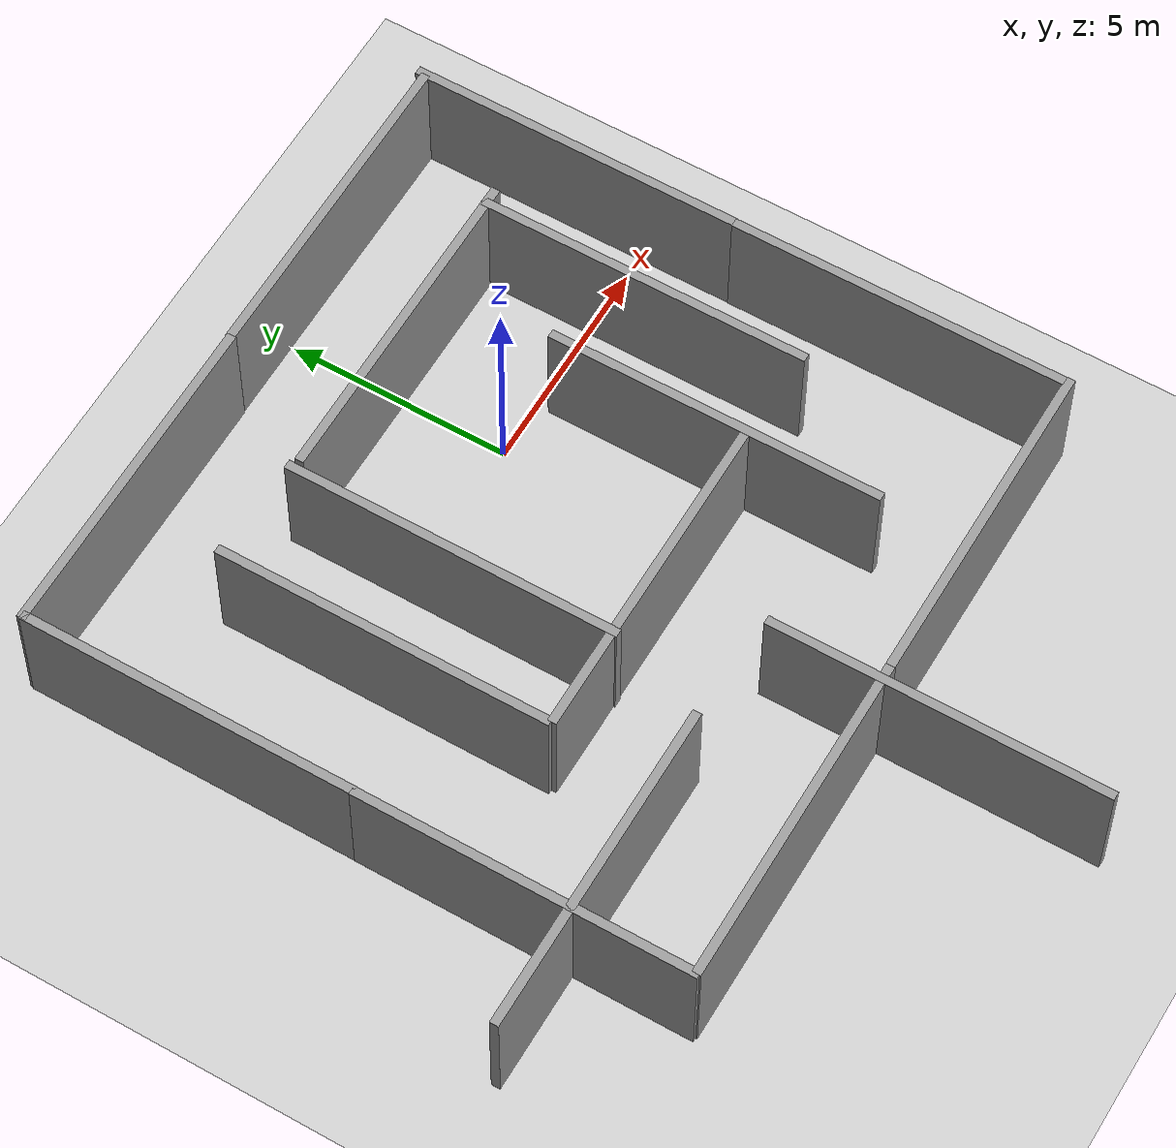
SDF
<sdf version="1.6">
 <world name="default">
  <light name="sun" type="directional">
   <pose>0 0 10 0 -0 0</pose>
   <diffuse>0.8 0.8 0.8 1</diffuse>
   <specular>0.1 0.1 0.1 1</specular>
   <attenuation>
    <range>1000</range>
    <constant>0.9</constant>
    <linear>0.01</linear>
    <quadratic>0.001</quadratic>
   </attenuation>
   <direction>-0.5 0.5 -1</direction>
  </light>
  <model name="ground_plane">
   <static>1</static>
   <link name="link">
    <collision name="collision">
     <geometry><plane><normal>0 0 1</normal><size>100 100</size></plane></geometry>
     <surface><friction><ode><mu>100</mu><mu2>50</mu2></ode></friction></surface>
    </collision>
    <visual name="visual">
     <cast_shadows>0</cast_shadows>
     <geometry><plane><normal>0 0 1</normal><size>100 100</size></plane></geometry>
     <material>
      <script><uri>file://media/materials/scripts/gazebo.material</uri><name>Gazebo/Grey</name></script>
     </material>
    </visual>
   </link>
  </model>
  <gravity>0 0 -9.8</gravity>
  <magnetic_field>6e-06 2.3e-05 -4.2e-05</magnetic_field>
  <atmosphere type="adiabatic"/>
  <physics name="default_physics" default="0" type="ode">
   <max_step_size>0.001</max_step_size>
   <real_time_factor>1</real_time_factor>
   <real_time_update_rate>1000</real_time_update_rate>
  </physics>
  <scene><ambient>0.4 0.4 0.4 1</ambient><background>0.7 0.7 0.7 1</background><shadows>1</shadows></scene>
  <spherical_coordinates>
   <surface_model>EARTH_WGS84</surface_model>
   <latitude_deg>0</latitude_deg>
   <longitude_deg>0</longitude_deg>
   <elevation>0</elevation>
   <heading_deg>0</heading_deg>
  </spherical_coordinates>
  <model name="grey_wall">
   <static>1</static>
   <link name="link">
    <pose>0 0 1.4 0 -0 0</pose>
    <collision name="collision"><geometry><box><size>7.5 0.2 2.8</size></box></geometry></collision>
    <visual name="visual">
     <cast_shadows>0</cast_shadows>
     <geometry><box><size>7.5 0.2 2.8</size></box></geometry>
     <material>
      <script>
       <uri>model://grey_wall/materials/scripts</uri>
       <uri>model://grey_wall/materials/textures</uri>
       <name>vrc/grey_wall</name>
      </script>
     </material>
    </visual>
   </link>
   <pose>-5.50835 -9.67581 0 0 -0 0</pose>
  </model>
  <light name="sun_0" type="directional">
   <pose>-1.5091 -0.570963 10 0 -0 0</pose>
   <diffuse>0.8 0.8 0.8 1</diffuse>
   <specular>0.1 0.1 0.1 1</specular>
   <attenuation>
    <range>1000</range>
    <constant>0.9</constant>
    <linear>0.01</linear>
    <quadratic>0.001</quadratic>
   </attenuation>
   <direction>-0.5 0.5 -1</direction>
  </light>
  <model name="grey_wall_0">
   <static>1</static>
   <link name="link">
    <pose>0 0 1.4 0 -0 0</pose>
    <collision name="collision"><geometry><box><size>7.5 0.2 2.8</size></box></geometry></collision>
    <visual name="visual">
     <cast_shadows>0</cast_shadows>
     <geometry><box><size>7.5 0.2 2.8</size></box></geometry>
     <material>
      <script>
       <uri>model://grey_wall/materials/scripts</uri>
       <uri>model://grey_wall/materials/textures</uri>
       <name>vrc/grey_wall</name>
      </script>
     </material>
    </visual>
   </link>
   <pose>1.96787 -9.67531 0 0 -0 0</pose>
  </model>
  <model name="grey_wall_clone">
   <static>1</static>
   <link name="link">
    <pose>0 0 1.4 0 -0 0</pose>
    <collision name="collision"><geometry><box><size>7.5 0.2 2.8</size></box></geometry></collision>
    <visual name="visual">
     <cast_shadows>0</cast_shadows>
     <geometry><box><size>7.5 0.2 2.8</size></box></geometry>
     <material>
      <script>
       <uri>model://grey_wall/materials/scripts</uri>
       <uri>model://grey_wall/materials/textures</uri>
       <name>vrc/grey_wall</name>
      </script>
     </material>
    </visual>
   </link>
   <pose>-9.2456 -5.99167 0 0 0 -1.5708</pose>
  </model>
  <model name="grey_wall_clone_0">
   <static>1</static>
   <link name="link">
    <pose>0 0 1.4 0 -0 0</pose>
    <collision name="collision"><geometry><box><size>7.5 0.2 2.8</size></box></geometry></collision>
    <visual name="visual">
     <cast_shadows>0</cast_shadows>
     <geometry><box><size>7.5 0.2 2.8</size></box></geometry>
     <material>
      <script>
       <uri>model://grey_wall/materials/scripts</uri>
       <uri>model://grey_wall/materials/textures</uri>
       <name>vrc/grey_wall</name>
      </script>
     </material>
    </visual>
   </link>
   <pose>-5.56928 5.16138 0 0 -0 0</pose>
  </model>
  <model name="grey_wall_clone_clone">
   <static>1</static>
   <link name="link">
    <pose>0 0 1.4 0 -0 0</pose>
    <collision name="collision"><geometry><box><size>7.5 0.2 2.8</size></box></geometry></collision>
    <visual name="visual">
     <cast_shadows>0</cast_shadows>
     <geometry><box><size>7.5 0.2 2.8</size></box></geometry>
     <material>
      <script>
       <uri>model://grey_wall/materials/scripts</uri>
       <uri>model://grey_wall/materials/textures</uri>
       <name>vrc/grey_wall</name>
      </script>
     </material>
    </visual>
   </link>
   <pose>-9.23874 1.44653 0 0 0 -1.5708</pose>
  </model>
  <model name="grey_wall_clone_0_clone">
   <static>1</static>
   <link name="link">
    <pose>0 0 1.4 0 -0 0</pose>
    <collision name="collision"><geometry><box><size>7.5 0.2 2.8</size></box></geometry></collision>
    <visual name="visual">
     <cast_shadows>0</cast_shadows>
     <geometry><box><size>7.5 0.2 2.8</size></box></geometry>
     <material>
      <script>
       <uri>model://grey_wall/materials/scripts</uri>
       <uri>model://grey_wall/materials/textures</uri>
       <name>vrc/grey_wall</name>
      </script>
     </material>
    </visual>
   </link>
   <pose>1.85824 5.17847 0 0 -0 0</pose>
  </model>
  <model name="grey_wall_clone_clone_clone">
   <static>1</static>
   <link name="link">
    <pose>0 0 1.4 0 -0 0</pose>
    <collision name="collision"><geometry><box><size>7.5 0.2 2.8</size></box></geometry></collision>
    <visual name="visual">
     <cast_shadows>0</cast_shadows>
     <geometry><box><size>7.5 0.2 2.8</size></box></geometry>
     <material>
      <script>
       <uri>model://grey_wall/materials/scripts</uri>
       <uri>model://grey_wall/materials/textures</uri>
       <name>vrc/grey_wall</name>
      </script>
     </material>
    </visual>
   </link>
   <pose>5.61474 -5.84598 0 0 0 -1.5708</pose>
  </model>
  <model name="grey_wall_clone_clone_clone_0">
   <static>1</static>
   <link name="link">
    <pose>0 0 1.4 0 -0 0</pose>
    <collision name="collision"><geometry><box><size>7.5 0.2 2.8</size></box></geometry></collision>
    <visual name="visual">
     <cast_shadows>0</cast_shadows>
     <geometry><box><size>7.5 0.2 2.8</size></box></geometry>
     <material>
      <script>
       <uri>model://grey_wall/materials/scripts</uri>
       <uri>model://grey_wall/materials/textures</uri>
       <name>vrc/grey_wall</name>
      </script>
     </material>
    </visual>
   </link>
   <pose>5.62399 1.63315 0 0 0 -1.5708</pose>
  </model>
  <model name="grey_wall_clone_0_clone_0">
   <static>1</static>
   <link name="link">
    <pose>0 0 1.4 0 -0 0</pose>
    <collision name="collision"><geometry><box><size>7.5 0.2 2.8</size></box></geometry></collision>
    <visual name="visual">
     <cast_shadows>0</cast_shadows>
     <geometry><box><size>7.5 0.2 2.8</size></box></geometry>
     <material>
      <script>
       <uri>model://grey_wall/materials/scripts</uri>
       <uri>model://grey_wall/materials/textures</uri>
       <name>vrc/grey_wall</name>
      </script>
     </material>
    </visual>
   </link>
   <pose>-8.26396 -7.00784 0 0 -0 0</pose>
  </model>
  <model name="grey_wall_clone_0_clone_1">
   <static>1</static>
   <link name="link">
    <pose>0 0 1.4 0 -0 0</pose>
    <collision name="collision"><geometry><box><size>7.5 0.2 2.8</size></box></geometry></collision>
    <visual name="visual">
     <cast_shadows>0</cast_shadows>
     <geometry><box><size>7.5 0.2 2.8</size></box></geometry>
     <material>
      <script>
       <uri>model://grey_wall/materials/scripts</uri>
       <uri>model://grey_wall/materials/textures</uri>
       <name>vrc/grey_wall</name>
      </script>
     </material>
    </visual>
   </link>
   <pose>-2.35674 -4.74509 0 0 -0 0</pose>
  </model>
  <model name="grey_wall_clone_clone_clone_clone">
   <static>1</static>
   <link name="link">
    <pose>0 0 1.4 0 -0 0</pose>
    <collision name="collision"><geometry><box><size>7.5 0.2 2.8</size></box></geometry></collision>
    <visual name="visual">
     <cast_shadows>0</cast_shadows>
     <geometry><box><size>7.5 0.2 2.8</size></box></geometry>
     <material>
      <script>
       <uri>model://grey_wall/materials/scripts</uri>
       <uri>model://grey_wall/materials/textures</uri>
       <name>vrc/grey_wall</name>
      </script>
     </material>
    </visual>
   </link>
   <pose>1.43223 -4.01346 0 0 0 -1.5708</pose>
  </model>
  <model name="grey_wall_clone_clone_clone_clone_0">
   <static>1</static>
   <link name="link">
    <pose>0 0 1.4 0 -0 0</pose>
    <collision name="collision"><geometry><box><size>7.5 0.2 2.8</size></box></geometry></collision>
    <visual name="visual">
     <cast_shadows>0</cast_shadows>
     <geometry><box><size>7.5 0.2 2.8</size></box></geometry>
     <material>
      <script>
       <uri>model://grey_wall/materials/scripts</uri>
       <uri>model://grey_wall/materials/textures</uri>
       <name>vrc/grey_wall</name>
      </script>
     </material>
    </visual>
   </link>
   <pose>3.50095 -1.18873 0 0 0 -1.5708</pose>
  </model>
  <model name="grey_wall_clone_0_clone_clone">
   <static>1</static>
   <link name="link">
    <pose>0 0 1.4 0 -0 0</pose>
    <collision name="collision"><geometry><box><size>7.5 0.2 2.8</size></box></geometry></collision>
    <visual name="visual">
     <cast_shadows>0</cast_shadows>
     <geometry><box><size>7.5 0.2 2.8</size></box></geometry>
     <material>
      <script>
       <uri>model://grey_wall/materials/scripts</uri>
       <uri>model://grey_wall/materials/textures</uri>
       <name>vrc/grey_wall</name>
      </script>
     </material>
    </visual>
   </link>
   <pose>0.127654 2.45738 0 0 -0 0</pose>
  </model>
  <model name="grey_wall_clone_clone_clone_clone_clone">
   <static>1</static>
   <link name="link">
    <pose>0 0 1.4 0 -0 0</pose>
    <collision name="collision"><geometry><box><size>7.5 0.2 2.8</size></box></geometry></collision>
    <visual name="visual">
     <cast_shadows>0</cast_shadows>
     <geometry><box><size>7.5 0.2 2.8</size></box></geometry>
     <material>
      <script>
       <uri>model://grey_wall/materials/scripts</uri>
       <uri>model://grey_wall/materials/textures</uri>
       <name>vrc/grey_wall</name>
      </script>
     </material>
    </visual>
   </link>
   <pose>-3.80131 -1.12531 0 0 0 -1.5708</pose>
  </model>
  <model name="grey_wall_clone_clone_0">
   <static>1</static>
   <link name="link">
    <pose>0 0 1.4 0 -0 0</pose>
    <collision name="collision"><geometry><box><size>7.5 0.2 2.8</size></box></geometry></collision>
    <visual name="visual">
     <cast_shadows>0</cast_shadows>
     <geometry><box><size>7.5 0.2 2.8</size></box></geometry>
     <material>
      <script>
       <uri>model://grey_wall/materials/scripts</uri>
       <uri>model://grey_wall/materials/textures</uri>
       <name>vrc/grey_wall</name>
      </script>
     </material>
    </visual>
   </link>
   <pose>-6.10637 -0.981679 0 0 0 -1.5708</pose>
  </model>
  <model name="grey_wall_clone_clone_clone_1">
   <static>1</static>
   <link name="link">
    <pose>0 0 1.4 0 -0 0</pose>
    <collision name="collision"><geometry><box><size>7.5 0.2 2.8</size></box></geometry></collision>
    <visual name="visual">
     <cast_shadows>0</cast_shadows>
     <geometry><box><size>7.5 0.2 2.8</size></box></geometry>
     <material>
      <script>
       <uri>model://grey_wall/materials/scripts</uri>
       <uri>model://grey_wall/materials/textures</uri>
       <name>vrc/grey_wall</name>
      </script>
     </material>
    </visual>
   </link>
   <pose>-2.10277 -10.8993 0 0 0 -1.5708</pose>
  </model>
 </world>
</sdf>
